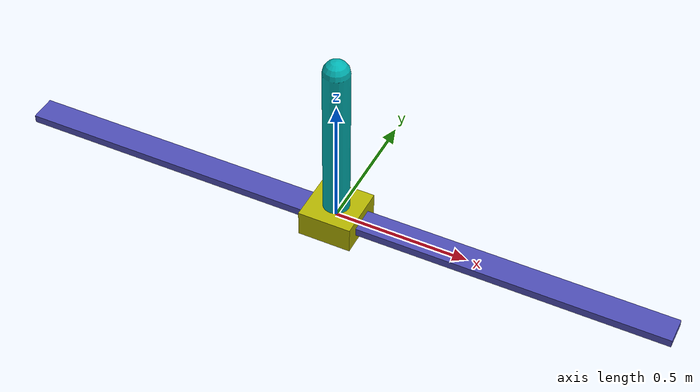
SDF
<?xml version="1.0"?>
<sdf version="1.8">
  <model name="inverted_pendulum">

    <!-- Rail: fixed to world via rail_fixed joint below -->
    <link name="rail">
      <inertial>
        <mass>10</mass>
        <inertia>
          <ixx>0.01042</ixx><ixy>0</ixy><ixz>0</ixz>
          <iyy>5.21042</iyy><iyz>0</iyz>
          <izz>5.21667</izz>
        </inertia>
      </inertial>
      <collision name="rail_collision">
        <geometry><box><size>2.5 0.1 0.03</size></box></geometry>
      </collision>
      <visual name="rail_visual">
        <geometry><box><size>2.5 0.1 0.03</size></box></geometry>
        <material>
          <diffuse>0.3 0.3 0.7 1</diffuse>
          <ambient>0.3 0.3 0.7 1</ambient>
        </material>
      </visual>
    </link>

    <!-- Fix rail to the world frame so it never moves -->
    <joint name="rail_fixed" type="fixed">
      <parent>world</parent>
      <child>rail</child>
    </joint>

    <!-- Prismatic joint: cart slides along X axis, range ±1 m -->
    <joint name="slider" type="prismatic">
      <parent>rail</parent>
      <child>cart</child>
      <axis>
        <xyz>1 0 0</xyz>
        <limit>
          <lower>-1</lower>
          <upper>1</upper>
          <effort>300</effort>
          <velocity>100</velocity>
        </limit>
        <dynamics><damping>0.1</damping><friction>0</friction></dynamics>
      </axis>
    </joint>

    <!-- Cart: block that slides along the rail -->
    <link name="cart">
      <inertial>
        <mass>1</mass>
        <inertia>
          <ixx>0.00417</ixx><ixy>0</ixy><ixz>0</ixz>
          <iyy>0.00667</iyy><iyz>0</iyz>
          <izz>0.00417</izz>
        </inertia>
      </inertial>
      <collision name="cart_collision">
        <geometry><box><size>0.2 0.2 0.1</size></box></geometry>
      </collision>
      <visual name="cart_visual">
        <geometry><box><size>0.2 0.2 0.1</size></box></geometry>
        <material>
          <diffuse>0.7 0.7 0.0 1</diffuse>
          <ambient>0.7 0.7 0.0 1</ambient>
        </material>
      </visual>
    </link>

    <!-- Revolute joint: pole swings around Y axis, mounted 5 cm above cart -->
    <joint name="hinge" type="revolute">
      <pose relative_to="cart">0 0 0.05 0 0 0</pose>
      <parent>cart</parent>
      <child>pole</child>
      <axis>
        <xyz>0 1 0</xyz>
        <limit>
          <!-- Wide limit — termination handled in env (|angle| > 0.2 rad) -->
          <lower>-1.5708</lower>
          <upper>1.5708</upper>
          <effort>0</effort>
          <velocity>100</velocity>
        </limit>
        <dynamics><damping>0.05</damping><friction>0</friction></dynamics>
      </axis>
    </joint>

    <!-- Pole: the inverted pendulum rod (0.6 m capsule, CoM at z=0.3) -->
    <link name="pole">
      <pose relative_to="hinge">0 0 0 0 0 0</pose>
      <inertial>
        <pose>0 0 0.3 0 0 0</pose>
        <mass>0.1</mass>
        <inertia>
          <!-- Thin-rod approx at CoM: Ixx=Iyy=m*L²/12, Izz=m*r²/2 -->
          <ixx>0.00306</ixx><ixy>0</ixy><ixz>0</ixz>
          <iyy>0.00306</iyy><iyz>0</iyz>
          <izz>0.00012</izz>
        </inertia>
      </inertial>
      <collision name="pole_collision">
        <pose>0 0 0.3 0 0 0</pose>
        <geometry><capsule><radius>0.049</radius><length>0.6</length></capsule></geometry>
      </collision>
      <visual name="pole_visual">
        <pose>0 0 0.3 0 0 0</pose>
        <geometry><capsule><radius>0.049</radius><length>0.6</length></capsule></geometry>
        <material>
          <diffuse>0.0 0.7 0.7 1</diffuse>
          <ambient>0.0 0.7 0.7 1</ambient>
        </material>
      </visual>
    </link>

    <!-- Force controller: /model/inverted_pendulum/joint/slider/cmd_force (gz.msgs.Double)
         gear=100, ctrl_max=3 → 300 N max; env scales action [-1,1] × 300 N -->
    <plugin filename="gz-sim-joint-controller-system"
            name="gz::sim::systems::JointController">
      <joint_name>slider</joint_name>
      <use_force_commands>true</use_force_commands>
      <cmd_max>300</cmd_max>
      <cmd_min>-300</cmd_min>
    </plugin>

    <!-- Joint state publisher: /world/{world}/model/inverted_pendulum/joint_state -->
    <plugin filename="gz-sim-joint-state-publisher-system"
            name="gz::sim::systems::JointStatePublisher">
      <joint_name>slider</joint_name>
      <joint_name>hinge</joint_name>
    </plugin>
  </model>
</sdf>
